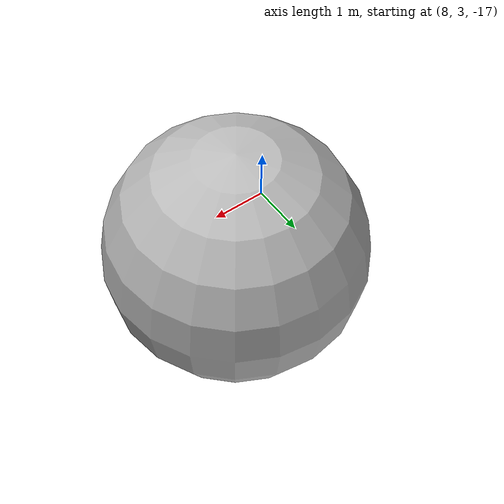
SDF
<?xml version="1.0"?>
<sdf version="1.6">
  <world name="underwater_world">
    <scene>
      <ambient>0.4 0.4 0.4 1</ambient>
      <background>0.1 0.1 0.3 1</background>
      <shadows>true</shadows>
      <fog>
        <color>0.1 0.1 0.3</color>
        <type>linear</type>
        <start>1.0</start>
        <end>50.0</end>
        <density>0.05</density>
      </fog>
    </scene>

    <light name="sun" type="directional">
      <pose>0 0 100 0 0 0</pose>
      <diffuse>0.8 0.8 0.8 1</diffuse>
      <specular>0.2 0.2 0.2 1</specular>
      <direction>-0.5 -0.5 -1</direction>
    </light>

    <model name="rock_1">
      <pose>10 5 -15 0 0 0</pose>
      <static>true</static>
      <link name="link">
        <collision name="collision"><geometry><sphere><radius>2</radius></sphere></geometry></collision>
        <visual name="visual"><geometry><sphere><radius>2</radius></sphere></geometry></visual>
      </link>
    </model>
  </world>
</sdf>
